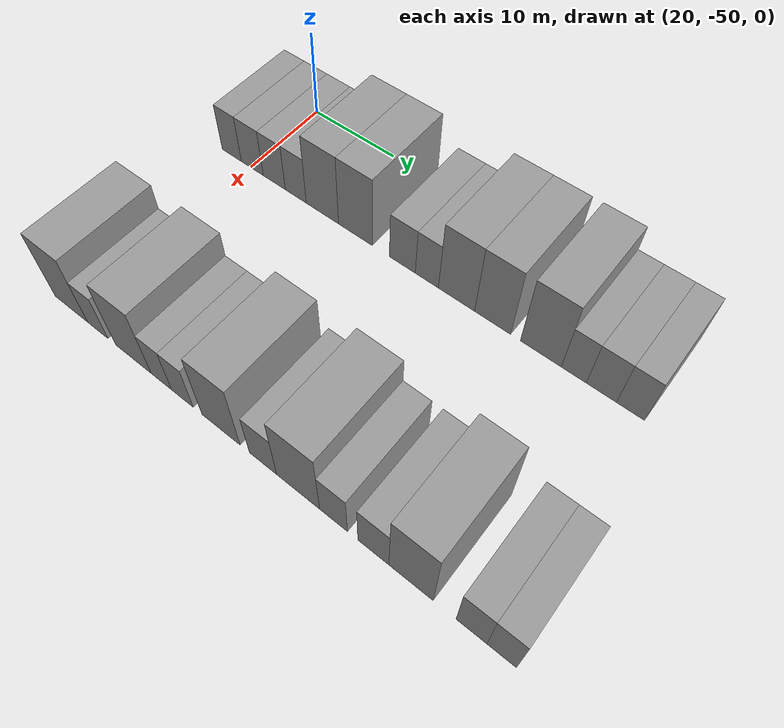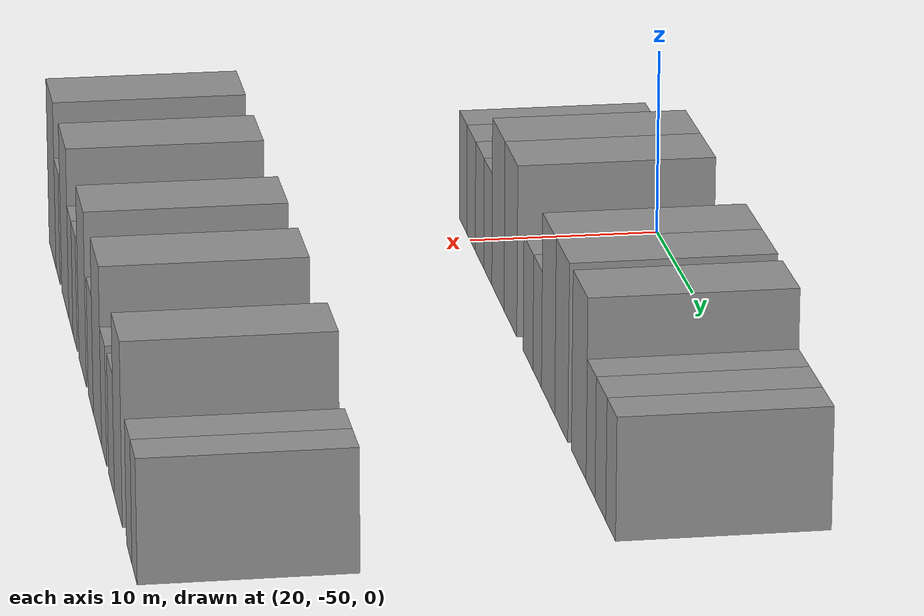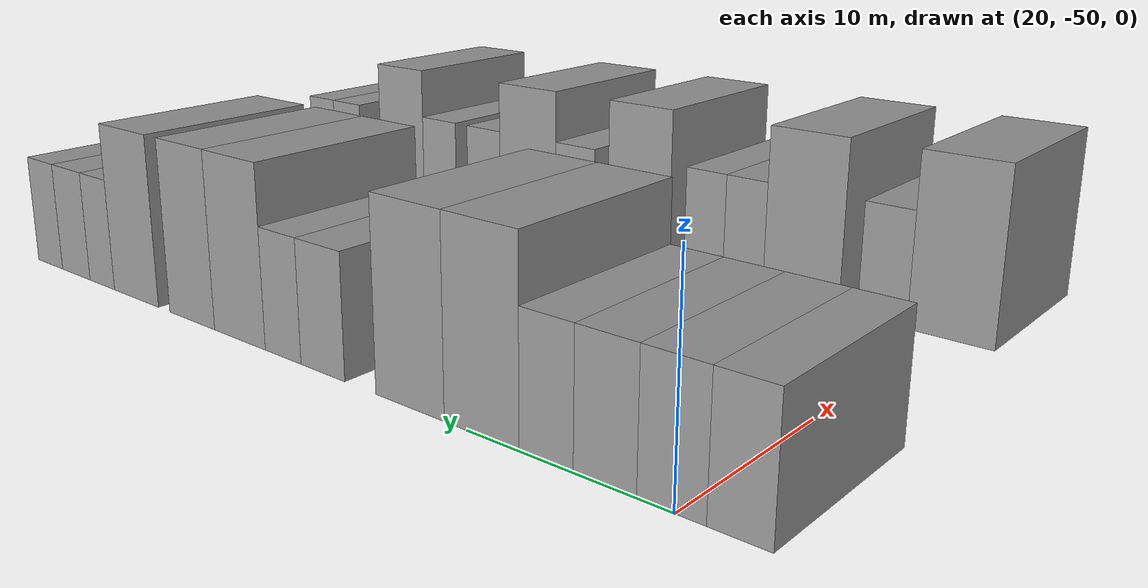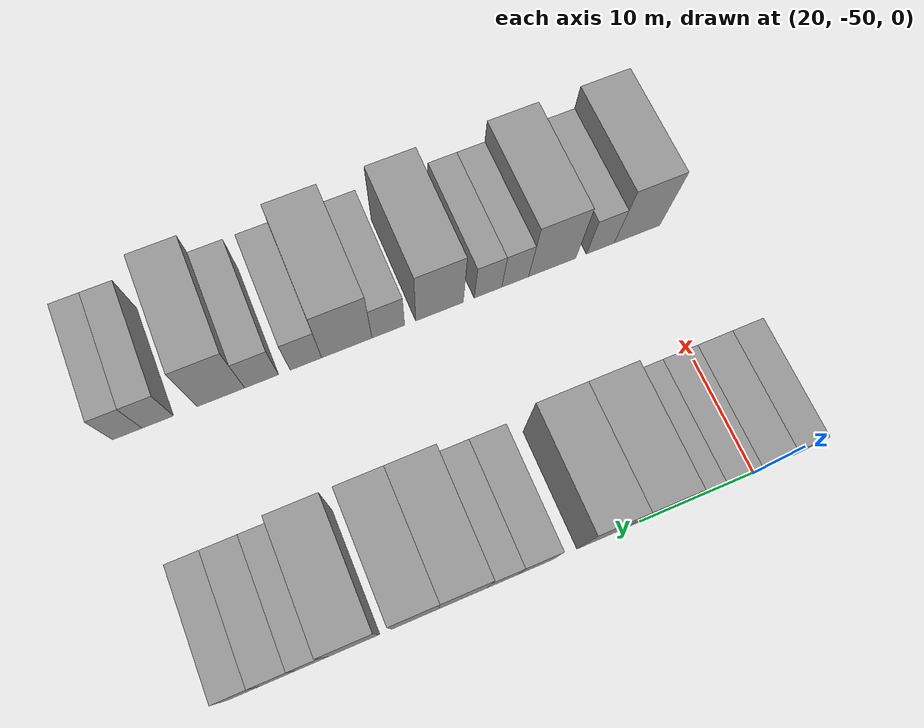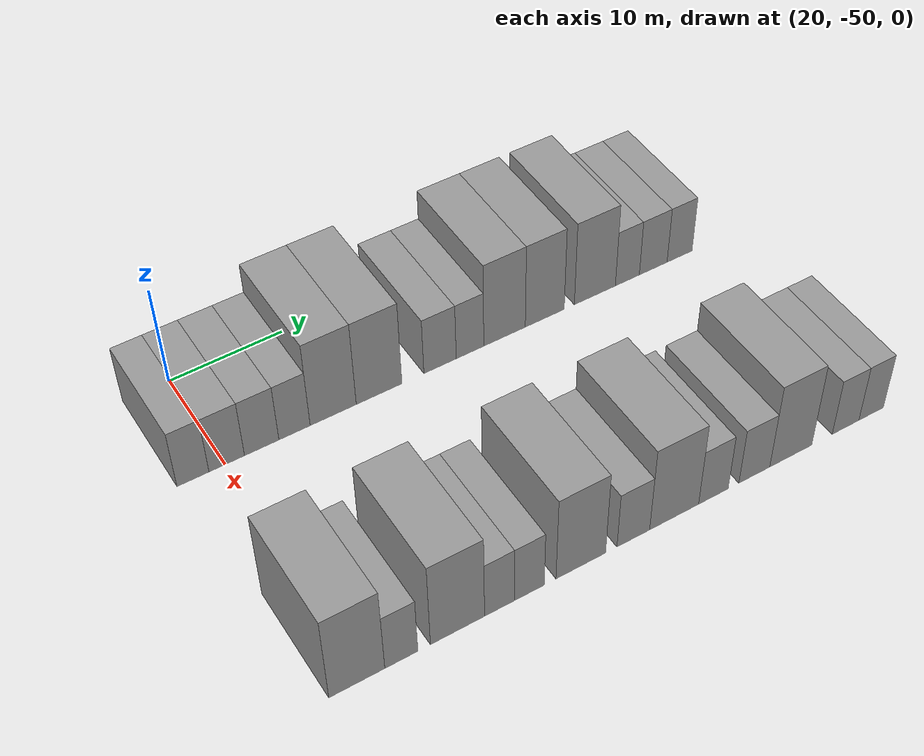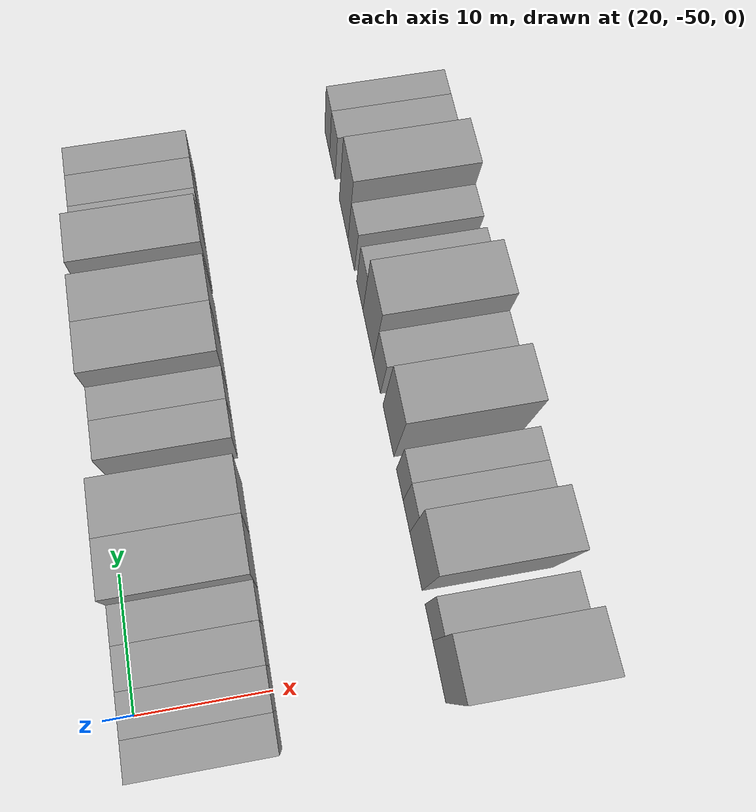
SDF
<sdf version="1.6">
 <world name="default">
  <model name="building_41">
   <static>1</static>
   <pose>25.0000 -52.6261 0 0.000000 0.000000 0.000000</pose>
   <link name="link">
    <pose>0 0 3.00 0 0 0</pose>
    <collision name="collision"><geometry><box><size>10.0000 2.6354 6.0000</size></box></geometry></collision>
    <visual name="visual">
     <cast_shadows>0</cast_shadows>
     <geometry><box><size>10.0000 2.6354 6.0000</size></box></geometry>
     <material>
      <script>
       <uri>model://grey_wall/materials/scripts</uri>
       <uri>model://grey_wall/materials/textures</uri>
       <name>vrc/grey_wall</name>
      </script>
     </material>
    </visual>
   </link>
  </model>
  <model name="building_42">
   <static>1</static>
   <pose>25.0000 -49.8273 0 0.000000 0.000000 0.000000</pose>
   <link name="link">
    <pose>0 0 3.00 0 0 0</pose>
    <collision name="collision"><geometry><box><size>10.0000 2.9623 6.0000</size></box></geometry></collision>
    <visual name="visual">
     <cast_shadows>0</cast_shadows>
     <geometry><box><size>10.0000 2.9623 6.0000</size></box></geometry>
     <material>
      <script>
       <uri>model://grey_wall/materials/scripts</uri>
       <uri>model://grey_wall/materials/textures</uri>
       <name>vrc/grey_wall</name>
      </script>
     </material>
    </visual>
   </link>
  </model>
  <model name="building_43">
   <static>1</static>
   <pose>25.0000 -46.8888 0 0.000000 0.000000 0.000000</pose>
   <link name="link">
    <pose>0 0 3.00 0 0 0</pose>
    <collision name="collision"><geometry><box><size>10.0000 2.9148 6.0000</size></box></geometry></collision>
    <visual name="visual">
     <cast_shadows>0</cast_shadows>
     <geometry><box><size>10.0000 2.9148 6.0000</size></box></geometry>
     <material>
      <script>
       <uri>model://grey_wall/materials/scripts</uri>
       <uri>model://grey_wall/materials/textures</uri>
       <name>vrc/grey_wall</name>
      </script>
     </material>
    </visual>
   </link>
  </model>
  <model name="building_44">
   <static>1</static>
   <pose>25.0000 -44.0853 0 0.000000 0.000000 0.000000</pose>
   <link name="link">
    <pose>0 0 3.00 0 0 0</pose>
    <collision name="collision"><geometry><box><size>10.0000 2.6921 6.0000</size></box></geometry></collision>
    <visual name="visual">
     <cast_shadows>0</cast_shadows>
     <geometry><box><size>10.0000 2.6921 6.0000</size></box></geometry>
     <material>
      <script>
       <uri>model://grey_wall/materials/scripts</uri>
       <uri>model://grey_wall/materials/textures</uri>
       <name>vrc/grey_wall</name>
      </script>
     </material>
    </visual>
   </link>
  </model>
  <model name="building_45">
   <static>1</static>
   <pose>25.0000 -40.7205 0 0.000000 0.000000 0.000000</pose>
   <link name="link">
    <pose>0 0 4.50 0 0 0</pose>
    <collision name="collision"><geometry><box><size>10.0000 4.0376 9.0000</size></box></geometry></collision>
    <visual name="visual">
     <cast_shadows>0</cast_shadows>
     <geometry><box><size>10.0000 4.0376 9.0000</size></box></geometry>
     <material>
      <script>
       <uri>model://grey_wall/materials/scripts</uri>
       <uri>model://grey_wall/materials/textures</uri>
       <name>vrc/grey_wall</name>
      </script>
     </material>
    </visual>
   </link>
  </model>
  <model name="building_46">
   <static>1</static>
   <pose>25.0000 -36.6584 0 0.000000 0.000000 0.000000</pose>
   <link name="link">
    <pose>0 0 4.50 0 0 0</pose>
    <collision name="collision"><geometry><box><size>10.0000 4.0865 9.0000</size></box></geometry></collision>
    <visual name="visual">
     <cast_shadows>0</cast_shadows>
     <geometry><box><size>10.0000 4.0865 9.0000</size></box></geometry>
     <material>
      <script>
       <uri>model://grey_wall/materials/scripts</uri>
       <uri>model://grey_wall/materials/textures</uri>
       <name>vrc/grey_wall</name>
      </script>
     </material>
    </visual>
   </link>
  </model>
  <model name="building_47">
   <static>1</static>
   <pose>25.0000 -31.1257 0 0.000000 0.000000 0.000000</pose>
   <link name="link">
    <pose>0 0 3.00 0 0 0</pose>
    <collision name="collision"><geometry><box><size>10.0000 2.9789 6.0000</size></box></geometry></collision>
    <visual name="visual">
     <cast_shadows>0</cast_shadows>
     <geometry><box><size>10.0000 2.9789 6.0000</size></box></geometry>
     <material>
      <script>
       <uri>model://grey_wall/materials/scripts</uri>
       <uri>model://grey_wall/materials/textures</uri>
       <name>vrc/grey_wall</name>
      </script>
     </material>
    </visual>
   </link>
  </model>
  <model name="building_48">
   <static>1</static>
   <pose>25.0000 -28.3454 0 0.000000 0.000000 0.000000</pose>
   <link name="link">
    <pose>0 0 3.00 0 0 0</pose>
    <collision name="collision"><geometry><box><size>10.0000 2.5817 6.0000</size></box></geometry></collision>
    <visual name="visual">
     <cast_shadows>0</cast_shadows>
     <geometry><box><size>10.0000 2.5817 6.0000</size></box></geometry>
     <material>
      <script>
       <uri>model://grey_wall/materials/scripts</uri>
       <uri>model://grey_wall/materials/textures</uri>
       <name>vrc/grey_wall</name>
      </script>
     </material>
    </visual>
   </link>
  </model>
  <model name="building_49">
   <static>1</static>
   <pose>25.0000 -25.0832 0 0.000000 0.000000 0.000000</pose>
   <link name="link">
    <pose>0 0 4.50 0 0 0</pose>
    <collision name="collision"><geometry><box><size>10.0000 3.9426 9.0000</size></box></geometry></collision>
    <visual name="visual">
     <cast_shadows>0</cast_shadows>
     <geometry><box><size>10.0000 3.9426 9.0000</size></box></geometry>
     <material>
      <script>
       <uri>model://grey_wall/materials/scripts</uri>
       <uri>model://grey_wall/materials/textures</uri>
       <name>vrc/grey_wall</name>
      </script>
     </material>
    </visual>
   </link>
  </model>
  <model name="building_50">
   <static>1</static>
   <pose>25.0000 -21.2267 0 0.000000 0.000000 0.000000</pose>
   <link name="link">
    <pose>0 0 4.50 0 0 0</pose>
    <collision name="collision"><geometry><box><size>10.0000 3.7704 9.0000</size></box></geometry></collision>
    <visual name="visual">
     <cast_shadows>0</cast_shadows>
     <geometry><box><size>10.0000 3.7704 9.0000</size></box></geometry>
     <material>
      <script>
       <uri>model://grey_wall/materials/scripts</uri>
       <uri>model://grey_wall/materials/textures</uri>
       <name>vrc/grey_wall</name>
      </script>
     </material>
    </visual>
   </link>
  </model>
  <model name="building_51">
   <static>1</static>
   <pose>25.0000 -16.3028 0 0.000000 0.000000 0.000000</pose>
   <link name="link">
    <pose>0 0 4.50 0 0 0</pose>
    <collision name="collision"><geometry><box><size>10.0000 4.0774 9.0000</size></box></geometry></collision>
    <visual name="visual">
     <cast_shadows>0</cast_shadows>
     <geometry><box><size>10.0000 4.0774 9.0000</size></box></geometry>
     <material>
      <script>
       <uri>model://grey_wall/materials/scripts</uri>
       <uri>model://grey_wall/materials/textures</uri>
       <name>vrc/grey_wall</name>
      </script>
     </material>
    </visual>
   </link>
  </model>
  <model name="building_52">
   <static>1</static>
   <pose>25.0000 -13.0524 0 0.000000 0.000000 0.000000</pose>
   <link name="link">
    <pose>0 0 3.00 0 0 0</pose>
    <collision name="collision"><geometry><box><size>10.0000 2.4233 6.0000</size></box></geometry></collision>
    <visual name="visual">
     <cast_shadows>0</cast_shadows>
     <geometry><box><size>10.0000 2.4233 6.0000</size></box></geometry>
     <material>
      <script>
       <uri>model://grey_wall/materials/scripts</uri>
       <uri>model://grey_wall/materials/textures</uri>
       <name>vrc/grey_wall</name>
      </script>
     </material>
    </visual>
   </link>
  </model>
  <model name="building_53">
   <static>1</static>
   <pose>25.0000 -10.4201 0 0.000000 0.000000 0.000000</pose>
   <link name="link">
    <pose>0 0 3.00 0 0 0</pose>
    <collision name="collision"><geometry><box><size>10.0000 2.8413 6.0000</size></box></geometry></collision>
    <visual name="visual">
     <cast_shadows>0</cast_shadows>
     <geometry><box><size>10.0000 2.8413 6.0000</size></box></geometry>
     <material>
      <script>
       <uri>model://grey_wall/materials/scripts</uri>
       <uri>model://grey_wall/materials/textures</uri>
       <name>vrc/grey_wall</name>
      </script>
     </material>
    </visual>
   </link>
  </model>
  <model name="building_54">
   <static>1</static>
   <pose>25.0000 -7.7079 0 0.000000 0.000000 0.000000</pose>
   <link name="link">
    <pose>0 0 3.00 0 0 0</pose>
    <collision name="collision"><geometry><box><size>10.0000 2.5832 6.0000</size></box></geometry></collision>
    <visual name="visual">
     <cast_shadows>0</cast_shadows>
     <geometry><box><size>10.0000 2.5832 6.0000</size></box></geometry>
     <material>
      <script>
       <uri>model://grey_wall/materials/scripts</uri>
       <uri>model://grey_wall/materials/textures</uri>
       <name>vrc/grey_wall</name>
      </script>
     </material>
    </visual>
   </link>
  </model>
  <model name="building_150">
   <static>1</static>
   <pose>47.0000 -50.7601 0 0.000000 0.000000 0.000000</pose>
   <link name="link">
    <pose>0 0 4.50 0 0 0</pose>
    <collision name="collision"><geometry><box><size>10.0000 4.3464 9.0000</size></box></geometry></collision>
    <visual name="visual">
     <cast_shadows>0</cast_shadows>
     <geometry><box><size>10.0000 4.3464 9.0000</size></box></geometry>
     <material>
      <script>
       <uri>model://grey_wall/materials/scripts</uri>
       <uri>model://grey_wall/materials/textures</uri>
       <name>vrc/grey_wall</name>
      </script>
     </material>
    </visual>
   </link>
  </model>
  <model name="building_151">
   <static>1</static>
   <pose>47.0000 -47.2789 0 0.000000 0.000000 0.000000</pose>
   <link name="link">
    <pose>0 0 3.00 0 0 0</pose>
    <collision name="collision"><geometry><box><size>10.0000 2.6161 6.0000</size></box></geometry></collision>
    <visual name="visual">
     <cast_shadows>0</cast_shadows>
     <geometry><box><size>10.0000 2.6161 6.0000</size></box></geometry>
     <material>
      <script>
       <uri>model://grey_wall/materials/scripts</uri>
       <uri>model://grey_wall/materials/textures</uri>
       <name>vrc/grey_wall</name>
      </script>
     </material>
    </visual>
   </link>
  </model>
  <model name="building_152">
   <static>1</static>
   <pose>47.0000 -42.7703 0 0.000000 0.000000 0.000000</pose>
   <link name="link">
    <pose>0 0 4.50 0 0 0</pose>
    <collision name="collision"><geometry><box><size>10.0000 4.4011 9.0000</size></box></geometry></collision>
    <visual name="visual">
     <cast_shadows>0</cast_shadows>
     <geometry><box><size>10.0000 4.4011 9.0000</size></box></geometry>
     <material>
      <script>
       <uri>model://grey_wall/materials/scripts</uri>
       <uri>model://grey_wall/materials/textures</uri>
       <name>vrc/grey_wall</name>
      </script>
     </material>
    </visual>
   </link>
  </model>
  <model name="building_153">
   <static>1</static>
   <pose>47.0000 -39.3345 0 0.000000 0.000000 0.000000</pose>
   <link name="link">
    <pose>0 0 3.00 0 0 0</pose>
    <collision name="collision"><geometry><box><size>10.0000 2.4706 6.0000</size></box></geometry></collision>
    <visual name="visual">
     <cast_shadows>0</cast_shadows>
     <geometry><box><size>10.0000 2.4706 6.0000</size></box></geometry>
     <material>
      <script>
       <uri>model://grey_wall/materials/scripts</uri>
       <uri>model://grey_wall/materials/textures</uri>
       <name>vrc/grey_wall</name>
      </script>
     </material>
    </visual>
   </link>
  </model>
  <model name="building_154">
   <static>1</static>
   <pose>47.0000 -36.8414 0 0.000000 0.000000 0.000000</pose>
   <link name="link">
    <pose>0 0 3.00 0 0 0</pose>
    <collision name="collision"><geometry><box><size>10.0000 2.5156 6.0000</size></box></geometry></collision>
    <visual name="visual">
     <cast_shadows>0</cast_shadows>
     <geometry><box><size>10.0000 2.5156 6.0000</size></box></geometry>
     <material>
      <script>
       <uri>model://grey_wall/materials/scripts</uri>
       <uri>model://grey_wall/materials/textures</uri>
       <name>vrc/grey_wall</name>
      </script>
     </material>
    </visual>
   </link>
  </model>
  <model name="building_155">
   <static>1</static>
   <pose>47.0000 -32.4428 0 0.000000 0.000000 0.000000</pose>
   <link name="link">
    <pose>0 0 4.50 0 0 0</pose>
    <collision name="collision"><geometry><box><size>10.0000 4.2817 9.0000</size></box></geometry></collision>
    <visual name="visual">
     <cast_shadows>0</cast_shadows>
     <geometry><box><size>10.0000 4.2817 9.0000</size></box></geometry>
     <material>
      <script>
       <uri>model://grey_wall/materials/scripts</uri>
       <uri>model://grey_wall/materials/textures</uri>
       <name>vrc/grey_wall</name>
      </script>
     </material>
    </visual>
   </link>
  </model>
  <model name="building_156">
   <static>1</static>
   <pose>47.0000 -27.8550 0 0.000000 0.000000 0.000000</pose>
   <link name="link">
    <pose>0 0 3.00 0 0 0</pose>
    <collision name="collision"><geometry><box><size>10.0000 2.8938 6.0000</size></box></geometry></collision>
    <visual name="visual">
     <cast_shadows>0</cast_shadows>
     <geometry><box><size>10.0000 2.8938 6.0000</size></box></geometry>
     <material>
      <script>
       <uri>model://grey_wall/materials/scripts</uri>
       <uri>model://grey_wall/materials/textures</uri>
       <name>vrc/grey_wall</name>
      </script>
     </material>
    </visual>
   </link>
  </model>
  <model name="building_157">
   <static>1</static>
   <pose>47.0000 -24.1919 0 0.000000 0.000000 0.000000</pose>
   <link name="link">
    <pose>0 0 4.50 0 0 0</pose>
    <collision name="collision"><geometry><box><size>10.0000 4.4325 9.0000</size></box></geometry></collision>
    <visual name="visual">
     <cast_shadows>0</cast_shadows>
     <geometry><box><size>10.0000 4.4325 9.0000</size></box></geometry>
     <material>
      <script>
       <uri>model://grey_wall/materials/scripts</uri>
       <uri>model://grey_wall/materials/textures</uri>
       <name>vrc/grey_wall</name>
      </script>
     </material>
    </visual>
   </link>
  </model>
  <model name="building_158">
   <static>1</static>
   <pose>47.0000 -20.6106 0 0.000000 0.000000 0.000000</pose>
   <link name="link">
    <pose>0 0 3.00 0 0 0</pose>
    <collision name="collision"><geometry><box><size>10.0000 2.7301 6.0000</size></box></geometry></collision>
    <visual name="visual">
     <cast_shadows>0</cast_shadows>
     <geometry><box><size>10.0000 2.7301 6.0000</size></box></geometry>
     <material>
      <script>
       <uri>model://grey_wall/materials/scripts</uri>
       <uri>model://grey_wall/materials/textures</uri>
       <name>vrc/grey_wall</name>
      </script>
     </material>
    </visual>
   </link>
  </model>
  <model name="building_159">
   <static>1</static>
   <pose>47.0000 -16.7902 0 0.000000 0.000000 0.000000</pose>
   <link name="link">
    <pose>0 0 3.00 0 0 0</pose>
    <collision name="collision"><geometry><box><size>10.0000 2.9107 6.0000</size></box></geometry></collision>
    <visual name="visual">
     <cast_shadows>0</cast_shadows>
     <geometry><box><size>10.0000 2.9107 6.0000</size></box></geometry>
     <material>
      <script>
       <uri>model://grey_wall/materials/scripts</uri>
       <uri>model://grey_wall/materials/textures</uri>
       <name>vrc/grey_wall</name>
      </script>
     </material>
    </visual>
   </link>
  </model>
  <model name="building_160">
   <static>1</static>
   <pose>47.0000 -13.3146 0 0.000000 0.000000 0.000000</pose>
   <link name="link">
    <pose>0 0 4.50 0 0 0</pose>
    <collision name="collision"><geometry><box><size>10.0000 4.0405 9.0000</size></box></geometry></collision>
    <visual name="visual">
     <cast_shadows>0</cast_shadows>
     <geometry><box><size>10.0000 4.0405 9.0000</size></box></geometry>
     <material>
      <script>
       <uri>model://grey_wall/materials/scripts</uri>
       <uri>model://grey_wall/materials/textures</uri>
       <name>vrc/grey_wall</name>
      </script>
     </material>
    </visual>
   </link>
  </model>
  <model name="building_161">
   <static>1</static>
   <pose>47.0000 -7.9783 0 0.000000 0.000000 0.000000</pose>
   <link name="link">
    <pose>0 0 3.00 0 0 0</pose>
    <collision name="collision"><geometry><box><size>10.0000 2.6321 6.0000</size></box></geometry></collision>
    <visual name="visual">
     <cast_shadows>0</cast_shadows>
     <geometry><box><size>10.0000 2.6321 6.0000</size></box></geometry>
     <material>
      <script>
       <uri>model://grey_wall/materials/scripts</uri>
       <uri>model://grey_wall/materials/textures</uri>
       <name>vrc/grey_wall</name>
      </script>
     </material>
    </visual>
   </link>
  </model>
  <model name="building_162">
   <static>1</static>
   <pose>47.0000 -5.4370 0 0.000000 0.000000 0.000000</pose>
   <link name="link">
    <pose>0 0 3.00 0 0 0</pose>
    <collision name="collision"><geometry><box><size>10.0000 2.4504 6.0000</size></box></geometry></collision>
    <visual name="visual">
     <cast_shadows>0</cast_shadows>
     <geometry><box><size>10.0000 2.4504 6.0000</size></box></geometry>
     <material>
      <script>
       <uri>model://grey_wall/materials/scripts</uri>
       <uri>model://grey_wall/materials/textures</uri>
       <name>vrc/grey_wall</name>
      </script>
     </material>
    </visual>
   </link>
  </model>
 </world>
</sdf>
